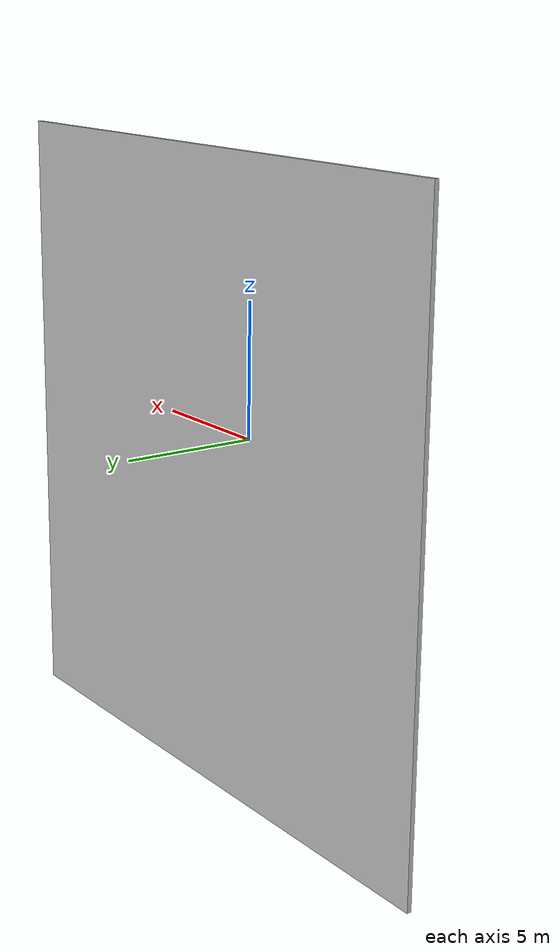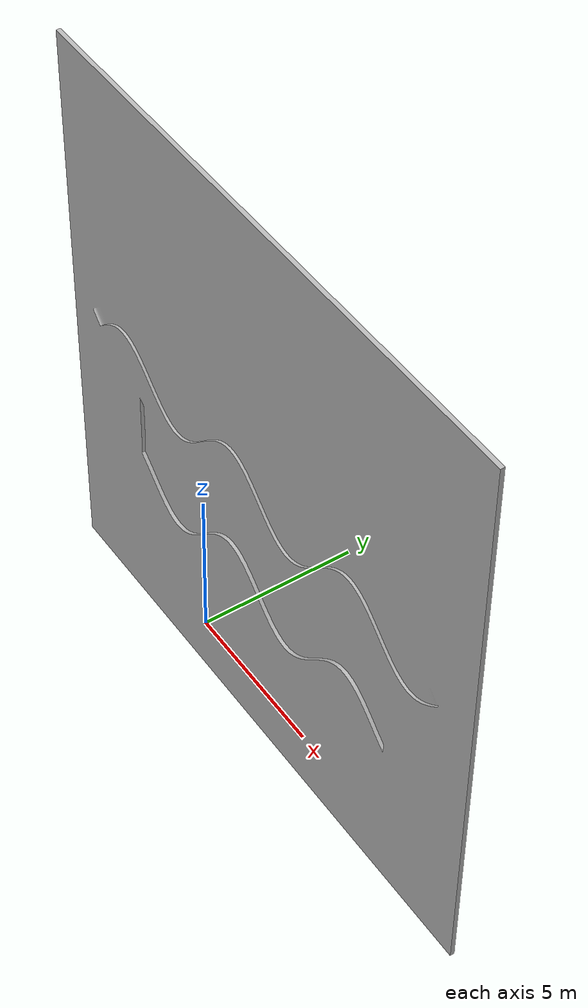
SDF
<?xml version ="1.0"?>
<sdf version="1.6">
  <model name="curve_path">
    <pose>-3.14159265359 4 0  1.57079632679 0 0</pose>
    <static>true</static>
    <link name="link">
      <collision name="colision1">
        <geometry>
          <mesh>
            <uri>model://curve_path/meshes/path.dae</uri>
          </mesh>
        </geometry>
      </collision>

      <visual name="visual1">
        <cast_shadows>true</cast_shadows>
        <geometry>
          <mesh>
            <uri>model://curve_path/meshes/path.dae</uri>
          </mesh>
        </geometry>
      </visual>

    </link>
  </model>
</sdf>
